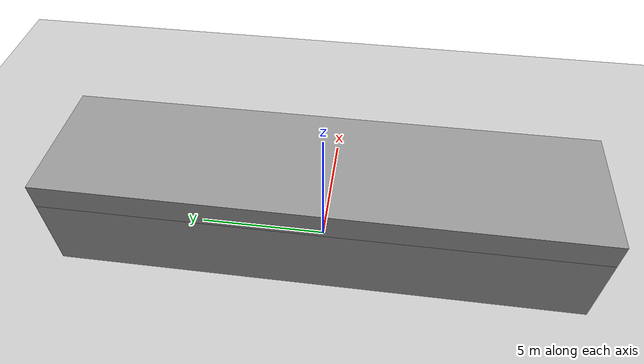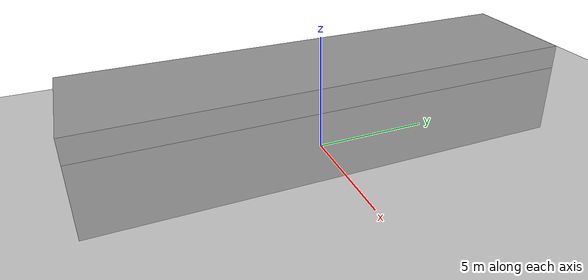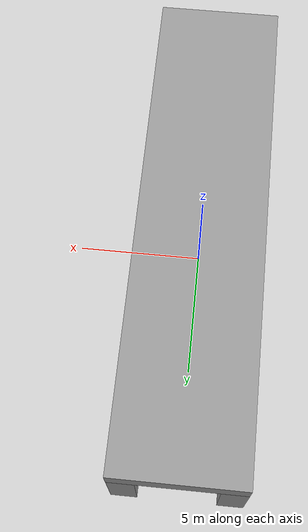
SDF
<sdf version="1.6">
 <world name="default">
  <light name="sun" type="directional">
   <pose>0 0 10 0 -0 0</pose>
   <diffuse>0.8 0.8 0.8 1</diffuse>
   <specular>0.1 0.1 0.1 1</specular>
   <attenuation>
    <range>1000</range>
    <constant>0.9</constant>
    <linear>0.01</linear>
    <quadratic>0.001</quadratic>
   </attenuation>
   <direction>-0.5 0.5 -1</direction>
  </light>
  <model name="ground_plane">
   <static>1</static>
   <link name="link">
    <collision name="collision">
     <geometry><plane><normal>0 0 1</normal><size>100 100</size></plane></geometry>
     <surface><friction><ode><mu>100</mu><mu2>50</mu2></ode></friction></surface>
    </collision>
    <visual name="visual">
     <cast_shadows>0</cast_shadows>
     <geometry><plane><normal>0 0 1</normal><size>100 100</size></plane></geometry>
     <material>
      <script><uri>file://media/materials/scripts/gazebo.material</uri><name>Gazebo/Grey</name></script>
     </material>
    </visual>
   </link>
  </model>
  <gravity>0 0 -9.8</gravity>
  <magnetic_field>6e-06 2.3e-05 -4.2e-05</magnetic_field>
  <atmosphere type="adiabatic"/>
  <physics name="default_physics" default="0" type="ode">
   <max_step_size>0.001</max_step_size>
   <real_time_factor>1</real_time_factor>
   <real_time_update_rate>1000</real_time_update_rate>
  </physics>
  <scene><ambient>0.4 0.4 0.4 1</ambient><background>0.7 0.7 0.7 1</background><shadows>1</shadows></scene>
  <spherical_coordinates>
   <surface_model>EARTH_WGS84</surface_model>
   <latitude_deg>0</latitude_deg>
   <longitude_deg>0</longitude_deg>
   <elevation>0</elevation>
   <heading_deg>0</heading_deg>
  </spherical_coordinates>
  <audio><device>default</device></audio>
  <model name="tunnel">
   <link name="link_0">
    <inertial>
     <mass>1</mass>
     <inertia>
      <ixx>0.166667</ixx>
      <ixy>0</ixy>
      <ixz>0</ixz>
      <iyy>0.166667</iyy>
      <iyz>0</iyz>
      <izz>0.166667</izz>
     </inertia>
    </inertial>
    <pose>2 0 -0.666667 0 -0 0</pose>
    <visual name="visual">
     <geometry><box><size>1 20 3</size></box></geometry>
     <material>
      <lighting>1</lighting>
      <script><uri>file://media/materials/scripts/gazebo.material</uri><name>Gazebo/Grey</name></script>
      <shader type="vertex"><normal_map>__default__</normal_map></shader>
      <ambient>0.3 0.3 0.3 1</ambient>
      <diffuse>0.7 0.7 0.7 1</diffuse>
      <specular>0.01 0.01 0.01 1</specular>
      <emissive>0 0 0 1</emissive>
     </material>
    </visual>
    <collision name="collision">
     <geometry><box><size>1 20 3</size></box></geometry>
     <surface>
      <friction>
       <ode><mu>1</mu><mu2>1</mu2><fdir1>0 0 0</fdir1><slip1>0</slip1><slip2>0</slip2></ode>
       <torsional>
        <coefficient>1</coefficient>
        <patch_radius>0</patch_radius>
        <surface_radius>0</surface_radius>
        <use_patch_radius>1</use_patch_radius>
        <ode><slip>0</slip></ode>
       </torsional>
      </friction>
      <bounce><restitution_coefficient>0</restitution_coefficient><threshold>1e+06</threshold></bounce>
      <contact>
       <collide_without_contact>0</collide_without_contact>
       <collide_without_contact_bitmask>1</collide_without_contact_bitmask>
       <collide_bitmask>1</collide_bitmask>
       <ode>
        <soft_cfm>0</soft_cfm>
        <soft_erp>0.2</soft_erp>
        <kp>1e+13</kp>
        <kd>1</kd>
        <max_vel>0.01</max_vel>
        <min_depth>0</min_depth>
       </ode>
       <bullet>
        <split_impulse>1</split_impulse>
        <split_impulse_penetration_threshold>-0.01</split_impulse_penetration_threshold>
        <soft_cfm>0</soft_cfm>
        <soft_erp>0.2</soft_erp>
        <kp>1e+13</kp>
        <kd>1</kd>
       </bullet>
      </contact>
     </surface>
    </collision>
   </link>
   <link name="link_0_clone">
    <inertial>
     <mass>1</mass>
     <inertia>
      <ixx>0.166667</ixx>
      <ixy>0</ixy>
      <ixz>0</ixz>
      <iyy>0.166667</iyy>
      <iyz>0</iyz>
      <izz>0.166667</izz>
     </inertia>
    </inertial>
    <pose>-2 0 -0.666667 0 -0 0</pose>
    <visual name="visual">
     <geometry><box><size>1 20 3</size></box></geometry>
     <material>
      <lighting>1</lighting>
      <script><uri>file://media/materials/scripts/gazebo.material</uri><name>Gazebo/Grey</name></script>
      <shader type="vertex"><normal_map>__default__</normal_map></shader>
      <ambient>0.3 0.3 0.3 1</ambient>
      <diffuse>0.7 0.7 0.7 1</diffuse>
      <specular>0.01 0.01 0.01 1</specular>
      <emissive>0 0 0 1</emissive>
     </material>
    </visual>
    <collision name="collision">
     <geometry><box><size>1 20 3</size></box></geometry>
     <surface>
      <friction>
       <ode><mu>1</mu><mu2>1</mu2><fdir1>0 0 0</fdir1><slip1>0</slip1><slip2>0</slip2></ode>
       <torsional>
        <coefficient>1</coefficient>
        <patch_radius>0</patch_radius>
        <surface_radius>0</surface_radius>
        <use_patch_radius>1</use_patch_radius>
        <ode><slip>0</slip></ode>
       </torsional>
      </friction>
      <bounce><restitution_coefficient>0</restitution_coefficient><threshold>1e+06</threshold></bounce>
      <contact>
       <collide_without_contact>0</collide_without_contact>
       <collide_without_contact_bitmask>1</collide_without_contact_bitmask>
       <collide_bitmask>1</collide_bitmask>
       <ode>
        <soft_cfm>0</soft_cfm>
        <soft_erp>0.2</soft_erp>
        <kp>1e+13</kp>
        <kd>1</kd>
        <max_vel>0.01</max_vel>
        <min_depth>0</min_depth>
       </ode>
       <bullet>
        <split_impulse>1</split_impulse>
        <split_impulse_penetration_threshold>-0.01</split_impulse_penetration_threshold>
        <soft_cfm>0</soft_cfm>
        <soft_erp>0.2</soft_erp>
        <kp>1e+13</kp>
        <kd>1</kd>
       </bullet>
      </contact>
     </surface>
    </collision>
   </link>
   <link name="link_1">
    <inertial>
     <mass>1</mass>
     <inertia>
      <ixx>0.166667</ixx>
      <ixy>0</ixy>
      <ixz>0</ixz>
      <iyy>0.166667</iyy>
      <iyz>0</iyz>
      <izz>0.166667</izz>
     </inertia>
    </inertial>
    <pose>0 0 1.33333 0 -0 0</pose>
    <visual name="visual">
     <geometry><box><size>5 20 1</size></box></geometry>
     <material>
      <lighting>1</lighting>
      <script><uri>file://media/materials/scripts/gazebo.material</uri><name>Gazebo/Grey</name></script>
      <shader type="vertex"><normal_map>__default__</normal_map></shader>
      <ambient>0.3 0.3 0.3 1</ambient>
      <diffuse>0.7 0.7 0.7 1</diffuse>
      <specular>0.01 0.01 0.01 1</specular>
      <emissive>0 0 0 1</emissive>
     </material>
    </visual>
    <collision name="collision">
     <geometry><box><size>5 20 1</size></box></geometry>
     <surface>
      <friction>
       <ode><mu>1</mu><mu2>1</mu2><fdir1>0 0 0</fdir1><slip1>0</slip1><slip2>0</slip2></ode>
       <torsional>
        <coefficient>1</coefficient>
        <patch_radius>0</patch_radius>
        <surface_radius>0</surface_radius>
        <use_patch_radius>1</use_patch_radius>
        <ode><slip>0</slip></ode>
       </torsional>
      </friction>
      <bounce><restitution_coefficient>0</restitution_coefficient><threshold>1e+06</threshold></bounce>
      <contact>
       <collide_without_contact>0</collide_without_contact>
       <collide_without_contact_bitmask>1</collide_without_contact_bitmask>
       <collide_bitmask>1</collide_bitmask>
       <ode>
        <soft_cfm>0</soft_cfm>
        <soft_erp>0.2</soft_erp>
        <kp>1e+13</kp>
        <kd>1</kd>
        <max_vel>0.01</max_vel>
        <min_depth>0</min_depth>
       </ode>
       <bullet>
        <split_impulse>1</split_impulse>
        <split_impulse_penetration_threshold>-0.01</split_impulse_penetration_threshold>
        <soft_cfm>0</soft_cfm>
        <soft_erp>0.2</soft_erp>
        <kp>1e+13</kp>
        <kd>1</kd>
       </bullet>
      </contact>
     </surface>
    </collision>
   </link>
   <static>1</static>
   <pose>0 0 2.16667 0 -0 0</pose>
  </model>
  <model name="flat_rock">
   <link name="link_0">
    <inertial>
     <mass>1</mass>
     <inertia>
      <ixx>0.166667</ixx>
      <ixy>0</ixy>
      <ixz>0</ixz>
      <iyy>0.166667</iyy>
      <iyz>0</iyz>
      <izz>0.166667</izz>
     </inertia>
    </inertial>
    <visual name="visual">
     <geometry><box><size>1 1 0.1</size></box></geometry>
     <material>
      <lighting>1</lighting>
      <script><uri>file://media/materials/scripts/gazebo.material</uri><name>Gazebo/Grey</name></script>
      <shader type="vertex"><normal_map>__default__</normal_map></shader>
      <ambient>0.3 0.3 0.3 1</ambient>
      <diffuse>0.7 0.7 0.7 1</diffuse>
      <specular>0.01 0.01 0.01 1</specular>
      <emissive>0 0 0 1</emissive>
     </material>
    </visual>
    <collision name="collision">
     <geometry><box><size>1 1 0.1</size></box></geometry>
     <surface>
      <friction>
       <ode><mu>1</mu><mu2>1</mu2><fdir1>0 0 0</fdir1><slip1>0</slip1><slip2>0</slip2></ode>
       <torsional>
        <coefficient>1</coefficient>
        <patch_radius>0</patch_radius>
        <surface_radius>0</surface_radius>
        <use_patch_radius>1</use_patch_radius>
        <ode><slip>0</slip></ode>
       </torsional>
      </friction>
      <bounce><restitution_coefficient>0</restitution_coefficient><threshold>1e+06</threshold></bounce>
      <contact>
       <collide_without_contact>0</collide_without_contact>
       <collide_without_contact_bitmask>1</collide_without_contact_bitmask>
       <collide_bitmask>1</collide_bitmask>
       <ode>
        <soft_cfm>0</soft_cfm>
        <soft_erp>0.2</soft_erp>
        <kp>1e+13</kp>
        <kd>1</kd>
        <max_vel>0.01</max_vel>
        <min_depth>0</min_depth>
       </ode>
       <bullet>
        <split_impulse>1</split_impulse>
        <split_impulse_penetration_threshold>-0.01</split_impulse_penetration_threshold>
        <soft_cfm>0</soft_cfm>
        <soft_erp>0.2</soft_erp>
        <kp>1e+13</kp>
        <kd>1</kd>
       </bullet>
      </contact>
     </surface>
    </collision>
   </link>
   <static>1</static>
   <pose>-0.380399 -8.66243 0.05 0 -0 0</pose>
  </model>
  <model name="flat_rock_1">
   <link name="link_0">
    <inertial>
     <mass>1</mass>
     <inertia>
      <ixx>0.166667</ixx>
      <ixy>0</ixy>
      <ixz>0</ixz>
      <iyy>0.166667</iyy>
      <iyz>0</iyz>
      <izz>0.166667</izz>
     </inertia>
    </inertial>
    <pose>0 0 0.05 0 -0 0</pose>
    <visual name="visual">
     <geometry><box><size>1 1 0.1</size></box></geometry>
     <material>
      <lighting>1</lighting>
      <script><uri>file://media/materials/scripts/gazebo.material</uri><name>Gazebo/Grey</name></script>
      <shader type="vertex"><normal_map>__default__</normal_map></shader>
      <ambient>0.3 0.3 0.3 1</ambient>
      <diffuse>0.7 0.7 0.7 1</diffuse>
      <specular>0.01 0.01 0.01 1</specular>
      <emissive>0 0 0 1</emissive>
     </material>
    </visual>
    <collision name="collision">
     <geometry><box><size>1 1 0.1</size></box></geometry>
     <surface>
      <friction>
       <ode><mu>1</mu><mu2>1</mu2><fdir1>0 0 0</fdir1><slip1>0</slip1><slip2>0</slip2></ode>
       <torsional>
        <coefficient>1</coefficient>
        <patch_radius>0</patch_radius>
        <surface_radius>0</surface_radius>
        <use_patch_radius>1</use_patch_radius>
        <ode><slip>0</slip></ode>
       </torsional>
      </friction>
      <bounce><restitution_coefficient>0</restitution_coefficient><threshold>1e+06</threshold></bounce>
      <contact>
       <collide_without_contact>0</collide_without_contact>
       <collide_without_contact_bitmask>1</collide_without_contact_bitmask>
       <collide_bitmask>1</collide_bitmask>
       <ode>
        <soft_cfm>0</soft_cfm>
        <soft_erp>0.2</soft_erp>
        <kp>1e+13</kp>
        <kd>1</kd>
        <max_vel>0.01</max_vel>
        <min_depth>0</min_depth>
       </ode>
       <bullet>
        <split_impulse>1</split_impulse>
        <split_impulse_penetration_threshold>-0.01</split_impulse_penetration_threshold>
        <soft_cfm>0</soft_cfm>
        <soft_erp>0.2</soft_erp>
        <kp>1e+13</kp>
        <kd>1</kd>
       </bullet>
      </contact>
     </surface>
    </collision>
   </link>
   <static>1</static>
   <pose>0.686473 -3.48862 0 0 -0 0</pose>
  </model>
 </world>
</sdf>
